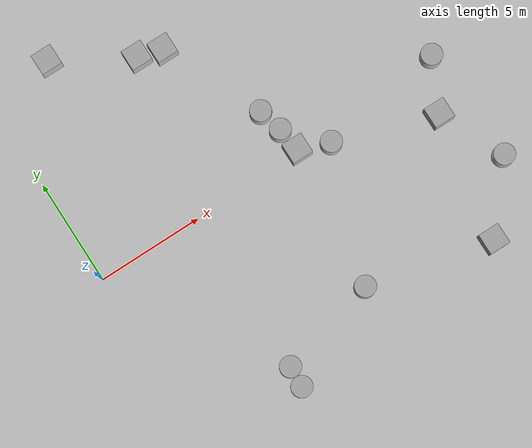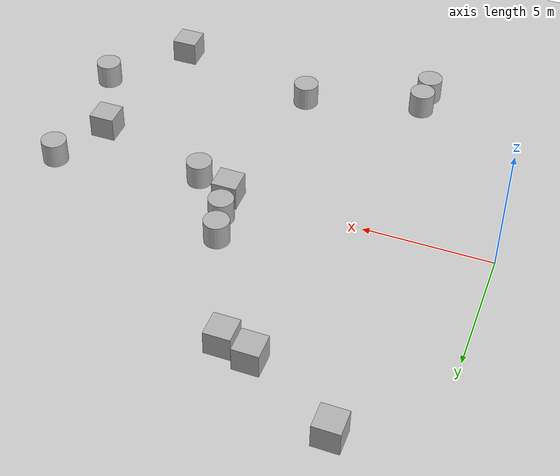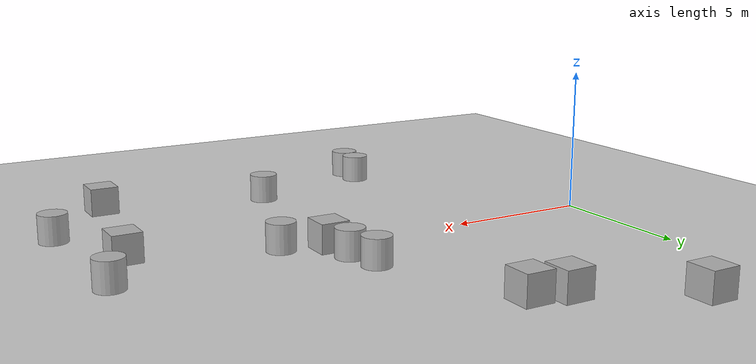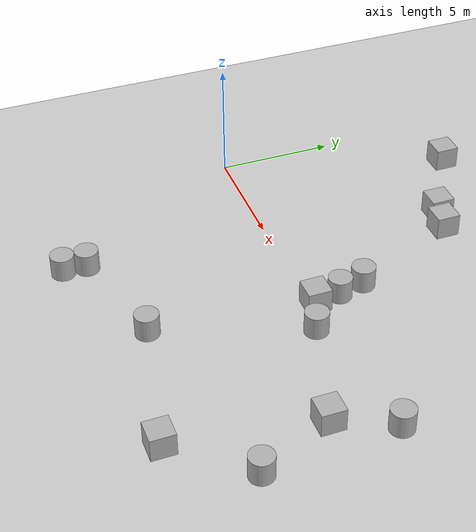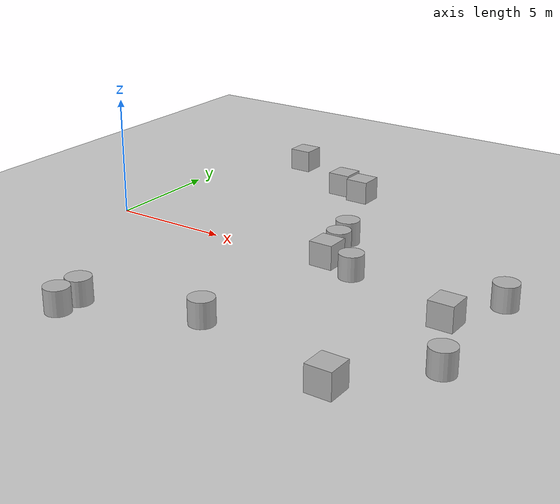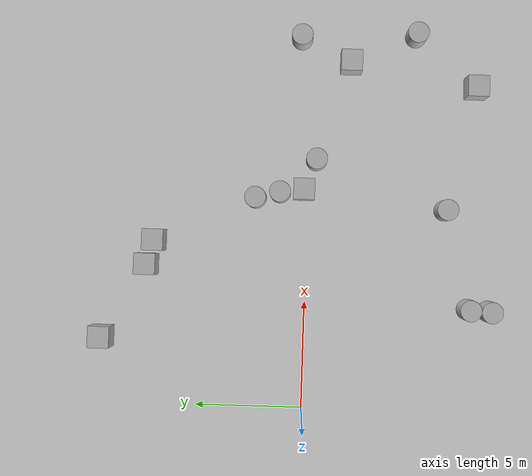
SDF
<sdf version="1.10">
 <world name="empty_world">
  <model name="ground_plane">
   <static>true</static>
   <link name="link">
    <collision name="collision">
     <geometry><plane><normal>0 0 1</normal><size>100 100</size></plane></geometry>
    </collision>
    <visual name="visual">
     <geometry><plane><normal>0 0 1</normal><size>100 100</size></plane></geometry>
     <material>
      <ambient>0.800000012 0.800000012 0.800000012 1</ambient>
      <diffuse>0.800000012 0.800000012 0.800000012 1</diffuse>
      <specular>0.800000012 0.800000012 0.800000012 1</specular>
     </material>
    </visual>
    <inertial>
     <mass>1</mass>
     <inertia><ixx>1</ixx><ixy>0</ixy><ixz>0</ixz><iyy>1</iyy><iyz>0</iyz><izz>1</izz></inertia>
    </inertial>
   </link>
  </model>
  <model name="box_1">
   <pose>3.1426352733939655 9.4955979281874896 0.49999999990199806 6.2287739151293738e-22 9.3279666454713669e-22 -3.6315533669320137e-22</pose>
   <link name="box_link">
    <inertial>
     <inertia><ixx>0.16666</ixx><ixy>0</ixy><ixz>0</ixz><iyy>0.16666</iyy><iyz>0</iyz><izz>0.16666</izz></inertia>
     <mass>1</mass>
    </inertial>
    <collision name="box_collision"><geometry><box><size>1 1 1</size></box></geometry></collision>
    <visual name="box_visual">
     <geometry><box><size>1 1 1</size></box></geometry>
     <material>
      <ambient>0.300000012 0.300000012 0.300000012 1</ambient>
      <diffuse>0.699999988 0.699999988 0.699999988 1</diffuse>
      <specular>1 1 1 1</specular>
     </material>
    </visual>
   </link>
   <static>true</static>
  </model>
  <model name="box_2">
   <pose>7.7352183409828932 7.170943573487464 0.49999999990199806 6.2287739151293738e-22 9.3279666454713669e-22 -3.6315533669320137e-22</pose>
   <link name="box_link">
    <inertial>
     <inertia><ixx>0.16666</ixx><ixy>0</ixy><ixz>0</ixz><iyy>0.16666</iyy><iyz>0</iyz><izz>0.16666</izz></inertia>
     <mass>1</mass>
    </inertial>
    <collision name="box_collision"><geometry><box><size>1 1 1</size></box></geometry></collision>
    <visual name="box_visual">
     <geometry><box><size>1 1 1</size></box></geometry>
     <material>
      <ambient>0.300000012 0.300000012 0.300000012 1</ambient>
      <diffuse>0.699999988 0.699999988 0.699999988 1</diffuse>
      <specular>1 1 1 1</specular>
     </material>
    </visual>
   </link>
   <static>true</static>
  </model>
  <model name="box_3">
   <pose>10.320273458855231 0.17719998761532096 0.49999999990199806 6.2287739151293738e-22 9.3279666454713669e-22 -3.6315533669320137e-22</pose>
   <link name="box_link">
    <inertial>
     <inertia><ixx>0.16666</ixx><ixy>0</ixy><ixz>0</ixz><iyy>0.16666</iyy><iyz>0</iyz><izz>0.16666</izz></inertia>
     <mass>1</mass>
    </inertial>
    <collision name="box_collision"><geometry><box><size>1 1 1</size></box></geometry></collision>
    <visual name="box_visual">
     <geometry><box><size>1 1 1</size></box></geometry>
     <material>
      <ambient>0.300000012 0.300000012 0.300000012 1</ambient>
      <diffuse>0.699999988 0.699999988 0.699999988 1</diffuse>
      <specular>1 1 1 1</specular>
     </material>
    </visual>
   </link>
   <static>true</static>
  </model>
  <model name="cylinder_3">
   <pose>10.159927280281213 1.3013546185450826 0.49999942638036005 4.6875231528734115e-19 1.7167537846951419e-19 8.1521379182205424e-21</pose>
   <link name="cylinder_link">
    <inertial>
     <inertia>
      <ixx>0.14580000000000001</ixx>
      <ixy>0</ixy>
      <ixz>0</ixz>
      <iyy>0.14580000000000001</iyy>
      <iyz>0</iyz>
      <izz>0.125</izz>
     </inertia>
     <mass>1</mass>
    </inertial>
    <collision name="cylinder_collision">
     <geometry><cylinder><radius>0.5</radius><length>1</length></cylinder></geometry>
    </collision>
    <visual name="cylinder_visual">
     <geometry><cylinder><radius>0.5</radius><length>1</length></cylinder></geometry>
     <material>
      <ambient>0.300000012 0.300000012 0.300000012 1</ambient>
      <diffuse>0.699999988 0.699999988 0.699999988 1</diffuse>
      <specular>1 1 1 1</specular>
     </material>
    </visual>
   </link>
   <static>true</static>
  </model>
  <model name="cylinder_4">
   <pose>17.589204301012245 0.46902261892449904 0.49999942638036005 9.6960953410408387e-20 -3.2720050125789555e-19 2.4647587059717133e-20</pose>
   <link name="cylinder_link">
    <inertial>
     <inertia>
      <ixx>0.14580000000000001</ixx>
      <ixy>0</ixy>
      <ixz>0</ixz>
      <iyy>0.14580000000000001</iyy>
      <iyz>0</iyz>
      <izz>0.125</izz>
     </inertia>
     <mass>1</mass>
    </inertial>
    <collision name="cylinder_collision">
     <geometry><cylinder><radius>0.5</radius><length>1</length></cylinder></geometry>
    </collision>
    <visual name="cylinder_visual">
     <geometry><cylinder><radius>0.5</radius><length>1</length></cylinder></geometry>
     <material>
      <ambient>0.300000012 0.300000012 0.300000012 1</ambient>
      <diffuse>0.699999988 0.699999988 0.699999988 1</diffuse>
      <specular>1 1 1 1</specular>
     </material>
    </visual>
   </link>
   <static>true</static>
  </model>
  <model name="box_4">
   <pose>16.449988264482197 -1.8886496375233657 0.49999999990199806 6.2287739151293738e-22 9.3279666454713669e-22 -3.6315533669320137e-22</pose>
   <link name="box_link">
    <inertial>
     <inertia><ixx>0.16666</ixx><ixy>0</ixy><ixz>0</ixz><iyy>0.16666</iyy><iyz>0</iyz><izz>0.16666</izz></inertia>
     <mass>1</mass>
    </inertial>
    <collision name="box_collision"><geometry><box><size>1 1 1</size></box></geometry></collision>
    <visual name="box_visual">
     <geometry><box><size>1 1 1</size></box></geometry>
     <material>
      <ambient>0.300000012 0.300000012 0.300000012 1</ambient>
      <diffuse>0.699999988 0.699999988 0.699999988 1</diffuse>
      <specular>1 1 1 1</specular>
     </material>
    </visual>
   </link>
   <static>true</static>
  </model>
  <model name="box_5">
   <pose>15.415860327515036 -7.8650439754918162 0.49999999235666714 -2.0235348558019218e-08 -5.4095292036978226e-10 2.754969671188418e-07</pose>
   <link name="box_link">
    <inertial>
     <inertia><ixx>0.16666</ixx><ixy>0</ixy><ixz>0</ixz><iyy>0.16666</iyy><iyz>0</iyz><izz>0.16666</izz></inertia>
     <mass>1</mass>
    </inertial>
    <collision name="box_collision"><geometry><box><size>1 1 1</size></box></geometry></collision>
    <visual name="box_visual">
     <geometry><box><size>1 1 1</size></box></geometry>
     <material>
      <ambient>0.300000012 0.300000012 0.300000012 1</ambient>
      <diffuse>0.699999988 0.699999988 0.699999988 1</diffuse>
      <specular>1 1 1 1</specular>
     </material>
    </visual>
   </link>
   <static>true</static>
  </model>
  <model name="cylinder_6">
   <pose>11.752829611597381 -0.38150180043711845 0.49999942638036005 -7.4475629153943373e-20 2.4314145242684027e-19 2.8384713089617412e-21</pose>
   <link name="cylinder_link">
    <inertial>
     <inertia>
      <ixx>0.14580000000000001</ixx>
      <ixy>0</ixy>
      <ixz>0</ixz>
      <iyy>0.14580000000000001</iyy>
      <iyz>0</iyz>
      <izz>0.125</izz>
     </inertia>
     <mass>1</mass>
    </inertial>
    <collision name="cylinder_collision">
     <geometry><cylinder><radius>0.5</radius><length>1</length></cylinder></geometry>
    </collision>
    <visual name="cylinder_visual">
     <geometry><cylinder><radius>0.5</radius><length>1</length></cylinder></geometry>
     <material>
      <ambient>0.300000012 0.300000012 0.300000012 1</ambient>
      <diffuse>0.699999988 0.699999988 0.699999988 1</diffuse>
      <specular>1 1 1 1</specular>
     </material>
    </visual>
   </link>
   <static>true</static>
  </model>
  <model name="cylinder_7">
   <pose>17.854267871007053 -4.9818690172100348 0.49999942638036005 -1.2027592401443267e-19 1.0404206135578428e-19 3.1038624854371553e-20</pose>
   <link name="cylinder_link">
    <inertial>
     <inertia>
      <ixx>0.14580000000000001</ixx>
      <ixy>0</ixy>
      <ixz>0</ixz>
      <iyy>0.14580000000000001</iyy>
      <iyz>0</iyz>
      <izz>0.125</izz>
     </inertia>
     <mass>1</mass>
    </inertial>
    <collision name="cylinder_collision">
     <geometry><cylinder><radius>0.5</radius><length>1</length></cylinder></geometry>
    </collision>
    <visual name="cylinder_visual">
     <geometry><cylinder><radius>0.5</radius><length>1</length></cylinder></geometry>
     <material>
      <ambient>0.300000012 0.300000012 0.300000012 1</ambient>
      <diffuse>0.699999988 0.699999988 0.699999988 1</diffuse>
      <specular>1 1 1 1</specular>
     </material>
    </visual>
   </link>
   <static>true</static>
  </model>
  <model name="cylinder_8">
   <pose>9.5348630115903514 -6.5528362012915853 0.49999942638036005 4.4311015558892038e-19 2.6294776182427126e-19 -1.5024773136058346e-20</pose>
   <link name="cylinder_link">
    <inertial>
     <inertia>
      <ixx>0.14580000000000001</ixx>
      <ixy>0</ixy>
      <ixz>0</ixz>
      <iyy>0.14580000000000001</iyy>
      <iyz>0</iyz>
      <izz>0.125</izz>
     </inertia>
     <mass>1</mass>
    </inertial>
    <collision name="cylinder_collision">
     <geometry><cylinder><radius>0.5</radius><length>1</length></cylinder></geometry>
    </collision>
    <visual name="cylinder_visual">
     <geometry><cylinder><radius>0.5</radius><length>1</length></cylinder></geometry>
     <material>
      <ambient>0.300000012 0.300000012 0.300000012 1</ambient>
      <diffuse>0.699999988 0.699999988 0.699999988 1</diffuse>
      <specular>1 1 1 1</specular>
     </material>
    </visual>
   </link>
   <static>true</static>
  </model>
  <model name="cylinder_9">
   <pose>4.8736925991263735 -7.7265303594347534 0.49999942638036005 -1.4169845423142048e-19 -1.8146596453449824e-20 3.0926300231275656e-20</pose>
   <link name="cylinder_link">
    <inertial>
     <inertia>
      <ixx>0.14580000000000001</ixx>
      <ixy>0</ixy>
      <ixz>0</ixz>
      <iyy>0.14580000000000001</iyy>
      <iyz>0</iyz>
      <izz>0.125</izz>
     </inertia>
     <mass>1</mass>
    </inertial>
    <collision name="cylinder_collision">
     <geometry><cylinder><radius>0.5</radius><length>1</length></cylinder></geometry>
    </collision>
    <visual name="cylinder_visual">
     <geometry><cylinder><radius>0.5</radius><length>1</length></cylinder></geometry>
     <material>
      <ambient>0.300000012 0.300000012 0.300000012 1</ambient>
      <diffuse>0.699999988 0.699999988 0.699999988 1</diffuse>
      <specular>1 1 1 1</specular>
     </material>
    </visual>
   </link>
   <static>true</static>
  </model>
  <model name="cylinder_16">
   <pose>4.8186982923226616 -8.7250170280479704 0.49999943337020003 1.1675612602436138e-08 1.249305924377407e-11 -0.067743203688675507</pose>
   <link name="cylinder_link">
    <inertial>
     <inertia>
      <ixx>0.14580000000000001</ixx>
      <ixy>0</ixy>
      <ixz>0</ixz>
      <iyy>0.14580000000000001</iyy>
      <iyz>0</iyz>
      <izz>0.125</izz>
     </inertia>
     <mass>1</mass>
    </inertial>
    <collision name="cylinder_collision">
     <geometry><cylinder><radius>0.5</radius><length>1</length></cylinder></geometry>
    </collision>
    <visual name="cylinder_visual">
     <geometry><cylinder><radius>0.5</radius><length>1</length></cylinder></geometry>
     <material>
      <ambient>0.300000012 0.300000012 0.300000012 1</ambient>
      <diffuse>0.699999988 0.699999988 0.699999988 1</diffuse>
      <specular>1 1 1 1</specular>
     </material>
    </visual>
   </link>
   <static>true</static>
  </model>
  <model name="cylinder_18">
   <pose>9.8682857802191268 2.4524339399095982 0.49999942638036005 2.2777723844229198e-19 -5.8104987443639407e-20 -2.7513217174761041e-20</pose>
   <link name="cylinder_link">
    <inertial>
     <inertia>
      <ixx>0.14580000000000001</ixx>
      <ixy>0</ixy>
      <ixz>0</ixz>
      <iyy>0.14580000000000001</iyy>
      <iyz>0</iyz>
      <izz>0.125</izz>
     </inertia>
     <mass>1</mass>
    </inertial>
    <collision name="cylinder_collision">
     <geometry><cylinder><radius>0.5</radius><length>1</length></cylinder></geometry>
    </collision>
    <visual name="cylinder_visual">
     <geometry><cylinder><radius>0.5</radius><length>1</length></cylinder></geometry>
     <material>
      <ambient>0.300000012 0.300000012 0.300000012 1</ambient>
      <diffuse>0.699999988 0.699999988 0.699999988 1</diffuse>
      <specular>1 1 1 1</specular>
     </material>
    </visual>
   </link>
   <static>true</static>
  </model>
  <model name="box_6">
   <pose>6.5952452293068378 7.4983097650374706 0.49999999990199806 6.2287739151293738e-22 9.3279666454713669e-22 -3.6315533669320137e-22</pose>
   <link name="box_link">
    <inertial>
     <inertia><ixx>0.16666</ixx><ixy>0</ixy><ixz>0</ixz><iyy>0.16666</iyy><iyz>0</iyz><izz>0.16666</izz></inertia>
     <mass>1</mass>
    </inertial>
    <collision name="box_collision"><geometry><box><size>1 1 1</size></box></geometry></collision>
    <visual name="box_visual">
     <geometry><box><size>1 1 1</size></box></geometry>
     <material>
      <ambient>0.300000012 0.300000012 0.300000012 1</ambient>
      <diffuse>0.699999988 0.699999988 0.699999988 1</diffuse>
      <specular>1 1 1 1</specular>
     </material>
    </visual>
   </link>
   <static>true</static>
  </model>
 </world>
</sdf>
